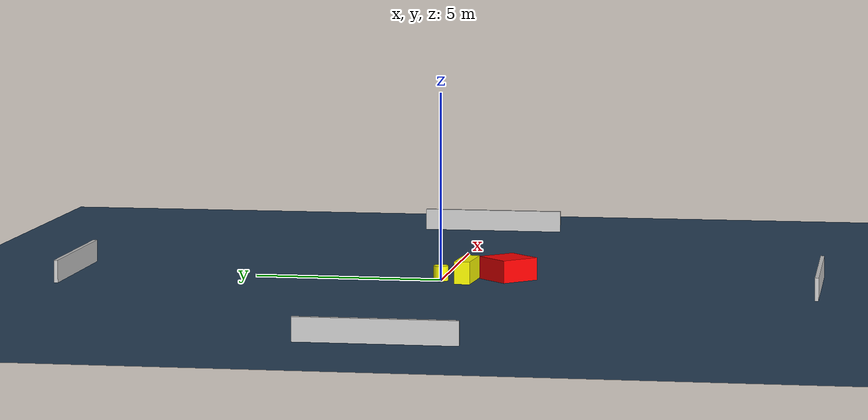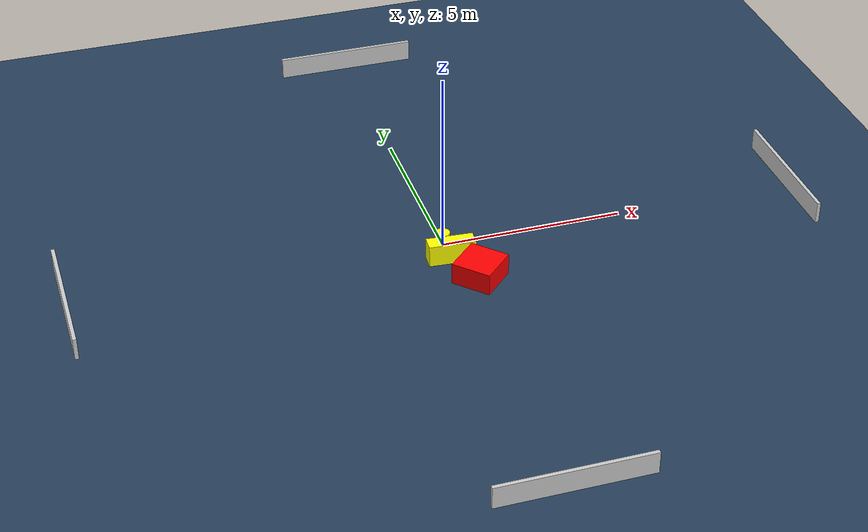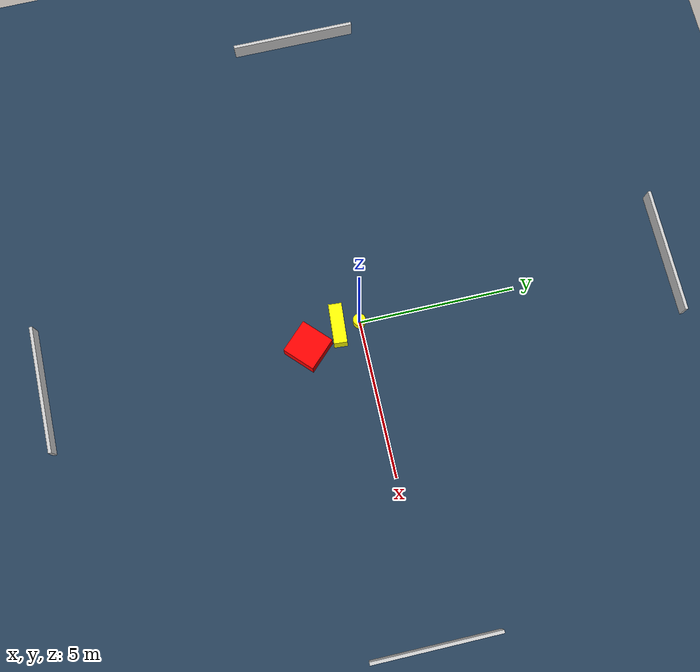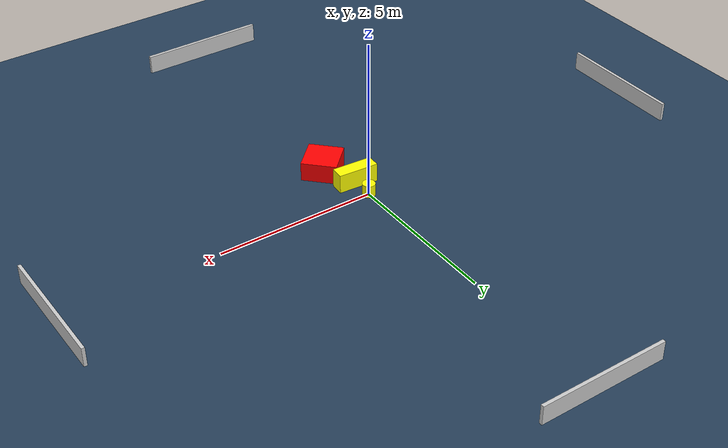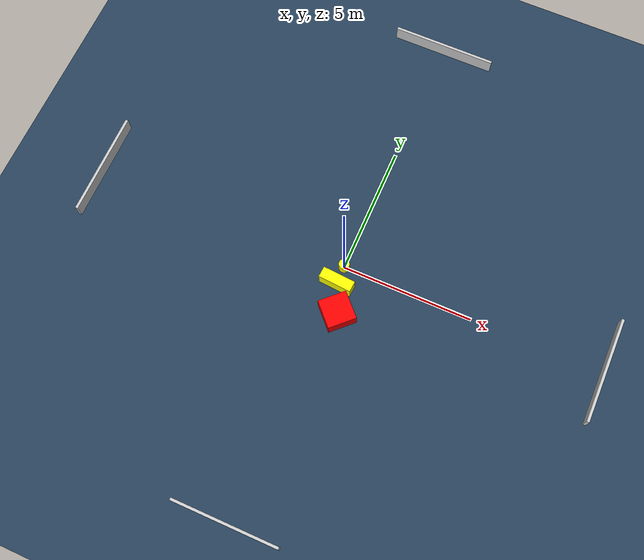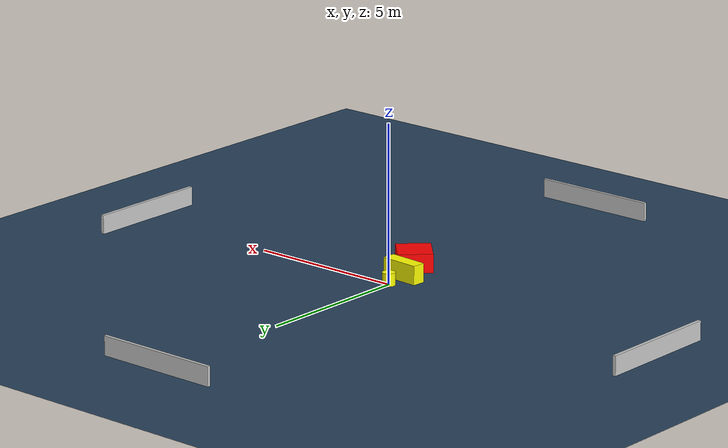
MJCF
<?xml version="1.0" ?>
<mujoco model="generated_environment">
  <option timestep="0.01" integrator="RK4" cone="elliptic"/>
  <default>
    <geom density="1"/>
  </default>
  <asset>
    <texture builtin="gradient" height="3072" name="skybox" rgb1="0.3 0.5 0.7" rgb2="0 0 0" type="skybox" width="512"/>
    <texture builtin="checker" height="300" name="groundplane" rgb1="0.2 0.3 0.4" rgb2="0.1 0.2 0.3" type="2d" width="300"/>
    <material name="groundplane" reflectance="0.2" texrepeat="5 5" texture="groundplane"/>
  </asset>
  <worldbody>
    <light dir="0 0 -1" directional="true" pos="0 0 1.5"/>
    <geom condim="3" friction="0.5 0.005 0.001" material="groundplane" name="floor" pos="0 0 0" size="0 0 0.05" type="plane"/>
    <body name="walls">
      <geom name="wall_1" condim="4" pos="-10.0 0.0 0.3" rgba="0.800000011920929 0.800000011920929 0.800000011920929 1.0" size="0.05 2.0 0.3" type="box"/>
      <geom name="wall_2" condim="4" pos="10.0 0.0 0.3" rgba="0.800000011920929 0.800000011920929 0.800000011920929 1.0" size="0.05 2.0 0.3" type="box"/>
      <geom name="wall_3" condim="4" pos="0.0 -10.0 0.3" rgba="0.800000011920929 0.800000011920929 0.800000011920929 1.0" size="2.0 0.05 0.3" type="box"/>
      <geom name="wall_4" condim="4" pos="0.0 10.0 0.3" rgba="0.800000011920929 0.800000011920929 0.800000011920929 1.0" size="2.0 0.05 0.3" type="box"/>
    </body>
    <body name="robot">
      <joint name="joint_x" type="slide" pos="0 0 0" axis="1 0 0"/>
      <joint name="joint_y" type="slide" pos="0 0 0" axis="0 1 0"/>
      <geom name="robot" type="cylinder" pos="0.0 0.0 0.2" size="0.2 0.2 0.0" mass="5.0" friction="1.0 0.005 0.0001" condim="4" rgba="1.0 1.0 0.0 1.0"/>
    </body>
    <body name="obstacle_1_movable">
      <geom name="obstacle_1_movable" condim="4" pos="0.010955376357822875 -0.6919660030143796 0.3" euler="0 0 176.0112613453594" friction="0.0 0.005 0.001" rgba="1.0 1.0 0.0 1.0" size="0.6314434670601534 0.21002443630141365 0.3" type="box" mass="0.1"/>
      <joint type="free"/>
    </body>
    <body name="obstacle_2_static">
      <geom name="obstacle_2_static" condim="4" pos="0.47896140439431173 -1.7373413200143843 0.3" euler="0 0 44.05643416721427" friction="0.0 0.005 0.001" rgba="1.0 0.0 0.0 1.0" size="0.5413893796268362 0.5455652154154037 0.3" type="box"/>
    </body>
  </worldbody>
  <actuator>
    <motor name="actuator_x" joint="joint_x" gear="1" ctrlrange="-1 1"/>
    <motor name="actuator_y" joint="joint_y" gear="1" ctrlrange="-1 1"/>
  </actuator>
</mujoco>
